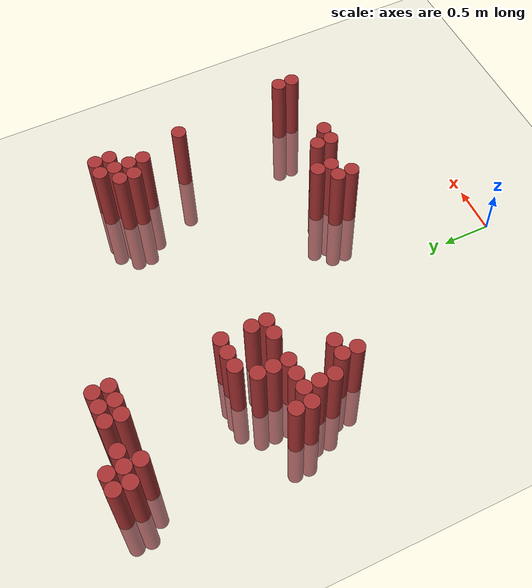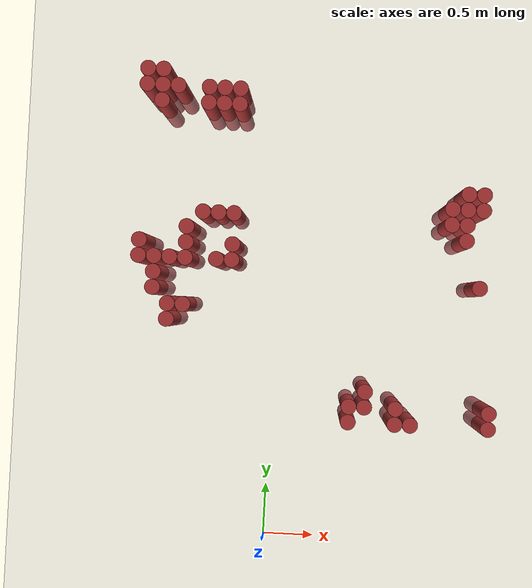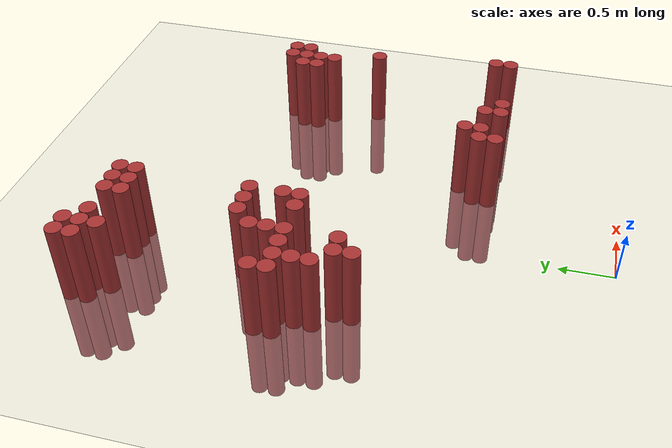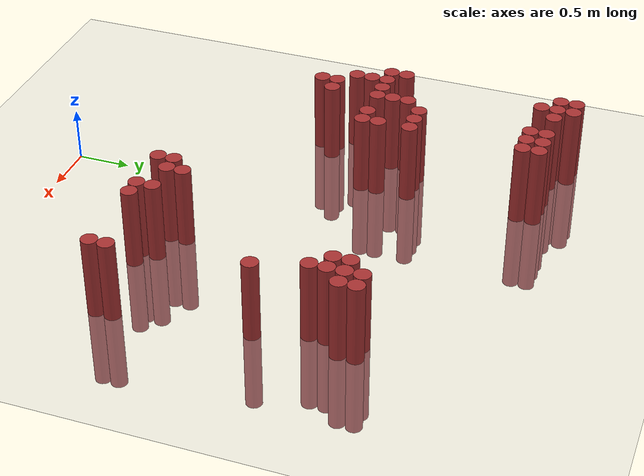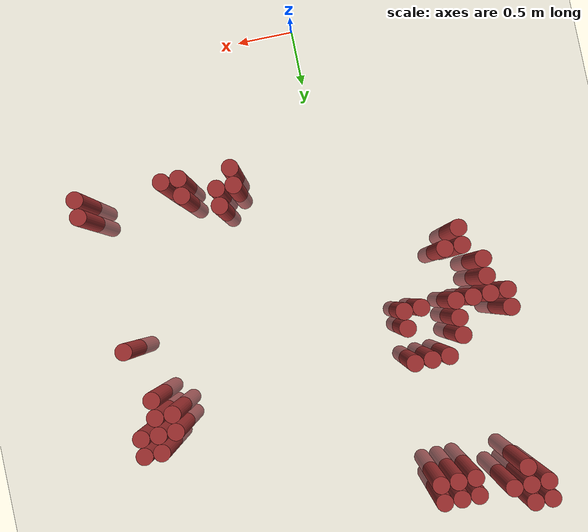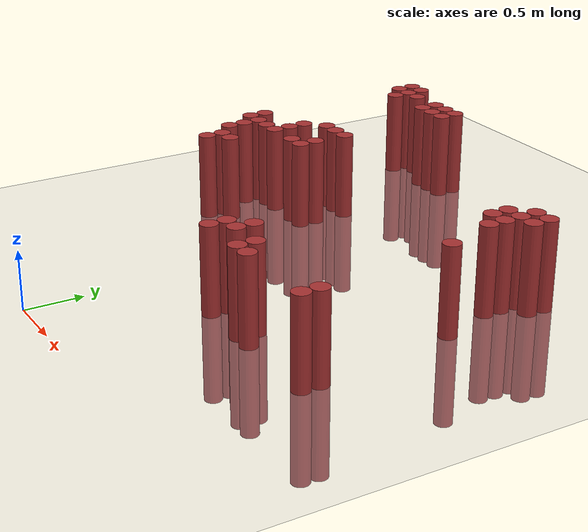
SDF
<sdf version="1.6">
 <world name="default">
  <model name="ground_plane">
   <static>1</static>
   <link name="link">
    <collision name="collision">
     <geometry><plane><normal>0 0 1</normal><size>100 100</size></plane></geometry>
     <surface><friction><ode><mu>100</mu><mu2>50</mu2></ode></friction></surface>
    </collision>
    <visual name="visual">
     <cast_shadows>0</cast_shadows>
     <geometry><plane><normal>0 0 1</normal><size>100 100</size></plane></geometry>
     <material>
      <script><uri>file://media/materials/scripts/gazebo.material</uri><name>Gazebo/Grey</name></script>
     </material>
    </visual>
   </link>
  </model>
  <model name="unit_cylinder_163">
   <static>1</static>
   <pose>-1.325000 2.725000 0.000000 0.000000 0.000000 0.000000</pose>
   <link name="link">
    <inertial>
     <mass>1</mass>
     <inertia><ixx>0.145833</ixx><ixy>0</ixy><ixz>0</ixz><iyy>0.145833</iyy><iyz>0</iyz><izz>0.125</izz></inertia>
    </inertial>
    <collision name="collision">
     <geometry><cylinder><radius>0.075000</radius><length>1.5</length></cylinder></geometry>
    </collision>
    <visual name="visual">
     <geometry><cylinder><radius>0.075000</radius><length>1.5</length></cylinder></geometry>
     <material>
      <ambient>0.648000 0.192000 0.192000 1</ambient>
      <diffuse>0.648000 0.192000 0.192000 1</diffuse>
     </material>
     <material>
      <script><name>Gazebo/Grey</name><uri>file://media/materials/scripts/gazebo.material</uri></script>
     </material>
    </visual>
   </link>
  </model>
  <model name="unit_cylinder_164">
   <static>1</static>
   <pose>-1.325000 2.875000 0.000000 0.000000 0.000000 0.000000</pose>
   <link name="link">
    <inertial>
     <mass>1</mass>
     <inertia><ixx>0.145833</ixx><ixy>0</ixy><ixz>0</ixz><iyy>0.145833</iyy><iyz>0</iyz><izz>0.125</izz></inertia>
    </inertial>
    <collision name="collision">
     <geometry><cylinder><radius>0.075000</radius><length>1.5</length></cylinder></geometry>
    </collision>
    <visual name="visual">
     <geometry><cylinder><radius>0.075000</radius><length>1.5</length></cylinder></geometry>
     <material>
      <ambient>0.648000 0.192000 0.192000 1</ambient>
      <diffuse>0.648000 0.192000 0.192000 1</diffuse>
     </material>
     <material>
      <script><name>Gazebo/Grey</name><uri>file://media/materials/scripts/gazebo.material</uri></script>
     </material>
    </visual>
   </link>
  </model>
  <model name="unit_cylinder_165">
   <static>1</static>
   <pose>-1.325000 4.375000 0.000000 0.000000 0.000000 0.000000</pose>
   <link name="link">
    <inertial>
     <mass>1</mass>
     <inertia><ixx>0.145833</ixx><ixy>0</ixy><ixz>0</ixz><iyy>0.145833</iyy><iyz>0</iyz><izz>0.125</izz></inertia>
    </inertial>
    <collision name="collision">
     <geometry><cylinder><radius>0.075000</radius><length>1.5</length></cylinder></geometry>
    </collision>
    <visual name="visual">
     <geometry><cylinder><radius>0.075000</radius><length>1.5</length></cylinder></geometry>
     <material>
      <ambient>0.648000 0.192000 0.192000 1</ambient>
      <diffuse>0.648000 0.192000 0.192000 1</diffuse>
     </material>
     <material>
      <script><name>Gazebo/Grey</name><uri>file://media/materials/scripts/gazebo.material</uri></script>
     </material>
    </visual>
   </link>
  </model>
  <model name="unit_cylinder_166">
   <static>1</static>
   <pose>-1.325000 4.525000 0.000000 0.000000 0.000000 0.000000</pose>
   <link name="link">
    <inertial>
     <mass>1</mass>
     <inertia><ixx>0.145833</ixx><ixy>0</ixy><ixz>0</ixz><iyy>0.145833</iyy><iyz>0</iyz><izz>0.125</izz></inertia>
    </inertial>
    <collision name="collision">
     <geometry><cylinder><radius>0.075000</radius><length>1.5</length></cylinder></geometry>
    </collision>
    <visual name="visual">
     <geometry><cylinder><radius>0.075000</radius><length>1.5</length></cylinder></geometry>
     <material>
      <ambient>0.648000 0.192000 0.192000 1</ambient>
      <diffuse>0.648000 0.192000 0.192000 1</diffuse>
     </material>
     <material>
      <script><name>Gazebo/Grey</name><uri>file://media/materials/scripts/gazebo.material</uri></script>
     </material>
    </visual>
   </link>
  </model>
  <model name="unit_cylinder_167">
   <static>1</static>
   <pose>-1.175000 2.425000 0.000000 0.000000 0.000000 0.000000</pose>
   <link name="link">
    <inertial>
     <mass>1</mass>
     <inertia><ixx>0.145833</ixx><ixy>0</ixy><ixz>0</ixz><iyy>0.145833</iyy><iyz>0</iyz><izz>0.125</izz></inertia>
    </inertial>
    <collision name="collision">
     <geometry><cylinder><radius>0.075000</radius><length>1.5</length></cylinder></geometry>
    </collision>
    <visual name="visual">
     <geometry><cylinder><radius>0.075000</radius><length>1.5</length></cylinder></geometry>
     <material>
      <ambient>0.648000 0.192000 0.192000 1</ambient>
      <diffuse>0.648000 0.192000 0.192000 1</diffuse>
     </material>
     <material>
      <script><name>Gazebo/Grey</name><uri>file://media/materials/scripts/gazebo.material</uri></script>
     </material>
    </visual>
   </link>
  </model>
  <model name="unit_cylinder_168">
   <static>1</static>
   <pose>-1.175000 2.575000 0.000000 0.000000 0.000000 0.000000</pose>
   <link name="link">
    <inertial>
     <mass>1</mass>
     <inertia><ixx>0.145833</ixx><ixy>0</ixy><ixz>0</ixz><iyy>0.145833</iyy><iyz>0</iyz><izz>0.125</izz></inertia>
    </inertial>
    <collision name="collision">
     <geometry><cylinder><radius>0.075000</radius><length>1.5</length></cylinder></geometry>
    </collision>
    <visual name="visual">
     <geometry><cylinder><radius>0.075000</radius><length>1.5</length></cylinder></geometry>
     <material>
      <ambient>0.648000 0.192000 0.192000 1</ambient>
      <diffuse>0.648000 0.192000 0.192000 1</diffuse>
     </material>
     <material>
      <script><name>Gazebo/Grey</name><uri>file://media/materials/scripts/gazebo.material</uri></script>
     </material>
    </visual>
   </link>
  </model>
  <model name="unit_cylinder_169">
   <static>1</static>
   <pose>-1.175000 2.725000 0.000000 0.000000 0.000000 0.000000</pose>
   <link name="link">
    <inertial>
     <mass>1</mass>
     <inertia><ixx>0.145833</ixx><ixy>0</ixy><ixz>0</ixz><iyy>0.145833</iyy><iyz>0</iyz><izz>0.125</izz></inertia>
    </inertial>
    <collision name="collision">
     <geometry><cylinder><radius>0.075000</radius><length>1.5</length></cylinder></geometry>
    </collision>
    <visual name="visual">
     <geometry><cylinder><radius>0.075000</radius><length>1.5</length></cylinder></geometry>
     <material>
      <ambient>0.648000 0.192000 0.192000 1</ambient>
      <diffuse>0.648000 0.192000 0.192000 1</diffuse>
     </material>
     <material>
      <script><name>Gazebo/Grey</name><uri>file://media/materials/scripts/gazebo.material</uri></script>
     </material>
    </visual>
   </link>
  </model>
  <model name="unit_cylinder_170">
   <static>1</static>
   <pose>-1.175000 4.225000 0.000000 0.000000 0.000000 0.000000</pose>
   <link name="link">
    <inertial>
     <mass>1</mass>
     <inertia><ixx>0.145833</ixx><ixy>0</ixy><ixz>0</ixz><iyy>0.145833</iyy><iyz>0</iyz><izz>0.125</izz></inertia>
    </inertial>
    <collision name="collision">
     <geometry><cylinder><radius>0.075000</radius><length>1.5</length></cylinder></geometry>
    </collision>
    <visual name="visual">
     <geometry><cylinder><radius>0.075000</radius><length>1.5</length></cylinder></geometry>
     <material>
      <ambient>0.648000 0.192000 0.192000 1</ambient>
      <diffuse>0.648000 0.192000 0.192000 1</diffuse>
     </material>
     <material>
      <script><name>Gazebo/Grey</name><uri>file://media/materials/scripts/gazebo.material</uri></script>
     </material>
    </visual>
   </link>
  </model>
  <model name="unit_cylinder_171">
   <static>1</static>
   <pose>-1.175000 4.375000 0.000000 0.000000 0.000000 0.000000</pose>
   <link name="link">
    <inertial>
     <mass>1</mass>
     <inertia><ixx>0.145833</ixx><ixy>0</ixy><ixz>0</ixz><iyy>0.145833</iyy><iyz>0</iyz><izz>0.125</izz></inertia>
    </inertial>
    <collision name="collision">
     <geometry><cylinder><radius>0.075000</radius><length>1.5</length></cylinder></geometry>
    </collision>
    <visual name="visual">
     <geometry><cylinder><radius>0.075000</radius><length>1.5</length></cylinder></geometry>
     <material>
      <ambient>0.648000 0.192000 0.192000 1</ambient>
      <diffuse>0.648000 0.192000 0.192000 1</diffuse>
     </material>
     <material>
      <script><name>Gazebo/Grey</name><uri>file://media/materials/scripts/gazebo.material</uri></script>
     </material>
    </visual>
   </link>
  </model>
  <model name="unit_cylinder_172">
   <static>1</static>
   <pose>-1.175000 4.525000 0.000000 0.000000 0.000000 0.000000</pose>
   <link name="link">
    <inertial>
     <mass>1</mass>
     <inertia><ixx>0.145833</ixx><ixy>0</ixy><ixz>0</ixz><iyy>0.145833</iyy><iyz>0</iyz><izz>0.125</izz></inertia>
    </inertial>
    <collision name="collision">
     <geometry><cylinder><radius>0.075000</radius><length>1.5</length></cylinder></geometry>
    </collision>
    <visual name="visual">
     <geometry><cylinder><radius>0.075000</radius><length>1.5</length></cylinder></geometry>
     <material>
      <ambient>0.648000 0.192000 0.192000 1</ambient>
      <diffuse>0.648000 0.192000 0.192000 1</diffuse>
     </material>
     <material>
      <script><name>Gazebo/Grey</name><uri>file://media/materials/scripts/gazebo.material</uri></script>
     </material>
    </visual>
   </link>
  </model>
  <model name="unit_cylinder_173">
   <static>1</static>
   <pose>-1.025000 2.125000 0.000000 0.000000 0.000000 0.000000</pose>
   <link name="link">
    <inertial>
     <mass>1</mass>
     <inertia><ixx>0.145833</ixx><ixy>0</ixy><ixz>0</ixz><iyy>0.145833</iyy><iyz>0</iyz><izz>0.125</izz></inertia>
    </inertial>
    <collision name="collision">
     <geometry><cylinder><radius>0.075000</radius><length>1.5</length></cylinder></geometry>
    </collision>
    <visual name="visual">
     <geometry><cylinder><radius>0.075000</radius><length>1.5</length></cylinder></geometry>
     <material>
      <ambient>0.648000 0.192000 0.192000 1</ambient>
      <diffuse>0.648000 0.192000 0.192000 1</diffuse>
     </material>
     <material>
      <script><name>Gazebo/Grey</name><uri>file://media/materials/scripts/gazebo.material</uri></script>
     </material>
    </visual>
   </link>
  </model>
  <model name="unit_cylinder_174">
   <static>1</static>
   <pose>-1.025000 2.275000 0.000000 0.000000 0.000000 0.000000</pose>
   <link name="link">
    <inertial>
     <mass>1</mass>
     <inertia><ixx>0.145833</ixx><ixy>0</ixy><ixz>0</ixz><iyy>0.145833</iyy><iyz>0</iyz><izz>0.125</izz></inertia>
    </inertial>
    <collision name="collision">
     <geometry><cylinder><radius>0.075000</radius><length>1.5</length></cylinder></geometry>
    </collision>
    <visual name="visual">
     <geometry><cylinder><radius>0.075000</radius><length>1.5</length></cylinder></geometry>
     <material>
      <ambient>0.648000 0.192000 0.192000 1</ambient>
      <diffuse>0.648000 0.192000 0.192000 1</diffuse>
     </material>
     <material>
      <script><name>Gazebo/Grey</name><uri>file://media/materials/scripts/gazebo.material</uri></script>
     </material>
    </visual>
   </link>
  </model>
  <model name="unit_cylinder_175">
   <static>1</static>
   <pose>-1.025000 2.725000 0.000000 0.000000 0.000000 0.000000</pose>
   <link name="link">
    <inertial>
     <mass>1</mass>
     <inertia><ixx>0.145833</ixx><ixy>0</ixy><ixz>0</ixz><iyy>0.145833</iyy><iyz>0</iyz><izz>0.125</izz></inertia>
    </inertial>
    <collision name="collision">
     <geometry><cylinder><radius>0.075000</radius><length>1.5</length></cylinder></geometry>
    </collision>
    <visual name="visual">
     <geometry><cylinder><radius>0.075000</radius><length>1.5</length></cylinder></geometry>
     <material>
      <ambient>0.648000 0.192000 0.192000 1</ambient>
      <diffuse>0.648000 0.192000 0.192000 1</diffuse>
     </material>
     <material>
      <script><name>Gazebo/Grey</name><uri>file://media/materials/scripts/gazebo.material</uri></script>
     </material>
    </visual>
   </link>
  </model>
  <model name="unit_cylinder_176">
   <static>1</static>
   <pose>-1.025000 4.375000 0.000000 0.000000 0.000000 0.000000</pose>
   <link name="link">
    <inertial>
     <mass>1</mass>
     <inertia><ixx>0.145833</ixx><ixy>0</ixy><ixz>0</ixz><iyy>0.145833</iyy><iyz>0</iyz><izz>0.125</izz></inertia>
    </inertial>
    <collision name="collision">
     <geometry><cylinder><radius>0.075000</radius><length>1.5</length></cylinder></geometry>
    </collision>
    <visual name="visual">
     <geometry><cylinder><radius>0.075000</radius><length>1.5</length></cylinder></geometry>
     <material>
      <ambient>0.648000 0.192000 0.192000 1</ambient>
      <diffuse>0.648000 0.192000 0.192000 1</diffuse>
     </material>
     <material>
      <script><name>Gazebo/Grey</name><uri>file://media/materials/scripts/gazebo.material</uri></script>
     </material>
    </visual>
   </link>
  </model>
  <model name="unit_cylinder_177">
   <static>1</static>
   <pose>-0.875000 2.275000 0.000000 0.000000 0.000000 0.000000</pose>
   <link name="link">
    <inertial>
     <mass>1</mass>
     <inertia><ixx>0.145833</ixx><ixy>0</ixy><ixz>0</ixz><iyy>0.145833</iyy><iyz>0</iyz><izz>0.125</izz></inertia>
    </inertial>
    <collision name="collision">
     <geometry><cylinder><radius>0.075000</radius><length>1.5</length></cylinder></geometry>
    </collision>
    <visual name="visual">
     <geometry><cylinder><radius>0.075000</radius><length>1.5</length></cylinder></geometry>
     <material>
      <ambient>0.648000 0.192000 0.192000 1</ambient>
      <diffuse>0.648000 0.192000 0.192000 1</diffuse>
     </material>
     <material>
      <script><name>Gazebo/Grey</name><uri>file://media/materials/scripts/gazebo.material</uri></script>
     </material>
    </visual>
   </link>
  </model>
  <model name="unit_cylinder_178">
   <static>1</static>
   <pose>-0.875000 2.725000 0.000000 0.000000 0.000000 0.000000</pose>
   <link name="link">
    <inertial>
     <mass>1</mass>
     <inertia><ixx>0.145833</ixx><ixy>0</ixy><ixz>0</ixz><iyy>0.145833</iyy><iyz>0</iyz><izz>0.125</izz></inertia>
    </inertial>
    <collision name="collision">
     <geometry><cylinder><radius>0.075000</radius><length>1.5</length></cylinder></geometry>
    </collision>
    <visual name="visual">
     <geometry><cylinder><radius>0.075000</radius><length>1.5</length></cylinder></geometry>
     <material>
      <ambient>0.648000 0.192000 0.192000 1</ambient>
      <diffuse>0.648000 0.192000 0.192000 1</diffuse>
     </material>
     <material>
      <script><name>Gazebo/Grey</name><uri>file://media/materials/scripts/gazebo.material</uri></script>
     </material>
    </visual>
   </link>
  </model>
  <model name="unit_cylinder_179">
   <static>1</static>
   <pose>-0.875000 2.875000 0.000000 0.000000 0.000000 0.000000</pose>
   <link name="link">
    <inertial>
     <mass>1</mass>
     <inertia><ixx>0.145833</ixx><ixy>0</ixy><ixz>0</ixz><iyy>0.145833</iyy><iyz>0</iyz><izz>0.125</izz></inertia>
    </inertial>
    <collision name="collision">
     <geometry><cylinder><radius>0.075000</radius><length>1.5</length></cylinder></geometry>
    </collision>
    <visual name="visual">
     <geometry><cylinder><radius>0.075000</radius><length>1.5</length></cylinder></geometry>
     <material>
      <ambient>0.648000 0.192000 0.192000 1</ambient>
      <diffuse>0.648000 0.192000 0.192000 1</diffuse>
     </material>
     <material>
      <script><name>Gazebo/Grey</name><uri>file://media/materials/scripts/gazebo.material</uri></script>
     </material>
    </visual>
   </link>
  </model>
  <model name="unit_cylinder_180">
   <static>1</static>
   <pose>-0.875000 3.025000 0.000000 0.000000 0.000000 0.000000</pose>
   <link name="link">
    <inertial>
     <mass>1</mass>
     <inertia><ixx>0.145833</ixx><ixy>0</ixy><ixz>0</ixz><iyy>0.145833</iyy><iyz>0</iyz><izz>0.125</izz></inertia>
    </inertial>
    <collision name="collision">
     <geometry><cylinder><radius>0.075000</radius><length>1.5</length></cylinder></geometry>
    </collision>
    <visual name="visual">
     <geometry><cylinder><radius>0.075000</radius><length>1.5</length></cylinder></geometry>
     <material>
      <ambient>0.648000 0.192000 0.192000 1</ambient>
      <diffuse>0.648000 0.192000 0.192000 1</diffuse>
     </material>
     <material>
      <script><name>Gazebo/Grey</name><uri>file://media/materials/scripts/gazebo.material</uri></script>
     </material>
    </visual>
   </link>
  </model>
  <model name="unit_cylinder_183">
   <static>1</static>
   <pose>-0.725000 3.175000 0.000000 0.000000 0.000000 0.000000</pose>
   <link name="link">
    <inertial>
     <mass>1</mass>
     <inertia><ixx>0.145833</ixx><ixy>0</ixy><ixz>0</ixz><iyy>0.145833</iyy><iyz>0</iyz><izz>0.125</izz></inertia>
    </inertial>
    <collision name="collision">
     <geometry><cylinder><radius>0.075000</radius><length>1.5</length></cylinder></geometry>
    </collision>
    <visual name="visual">
     <geometry><cylinder><radius>0.075000</radius><length>1.5</length></cylinder></geometry>
     <material>
      <ambient>0.648000 0.192000 0.192000 1</ambient>
      <diffuse>0.648000 0.192000 0.192000 1</diffuse>
     </material>
     <material>
      <script><name>Gazebo/Grey</name><uri>file://media/materials/scripts/gazebo.material</uri></script>
     </material>
    </visual>
   </link>
  </model>
  <model name="unit_cylinder_184">
   <static>1</static>
   <pose>-0.725000 4.225000 0.000000 0.000000 0.000000 0.000000</pose>
   <link name="link">
    <inertial>
     <mass>1</mass>
     <inertia><ixx>0.145833</ixx><ixy>0</ixy><ixz>0</ixz><iyy>0.145833</iyy><iyz>0</iyz><izz>0.125</izz></inertia>
    </inertial>
    <collision name="collision">
     <geometry><cylinder><radius>0.075000</radius><length>1.5</length></cylinder></geometry>
    </collision>
    <visual name="visual">
     <geometry><cylinder><radius>0.075000</radius><length>1.5</length></cylinder></geometry>
     <material>
      <ambient>0.648000 0.192000 0.192000 1</ambient>
      <diffuse>0.648000 0.192000 0.192000 1</diffuse>
     </material>
     <material>
      <script><name>Gazebo/Grey</name><uri>file://media/materials/scripts/gazebo.material</uri></script>
     </material>
    </visual>
   </link>
  </model>
  <model name="unit_cylinder_185">
   <static>1</static>
   <pose>-0.725000 4.375000 0.000000 0.000000 0.000000 0.000000</pose>
   <link name="link">
    <inertial>
     <mass>1</mass>
     <inertia><ixx>0.145833</ixx><ixy>0</ixy><ixz>0</ixz><iyy>0.145833</iyy><iyz>0</iyz><izz>0.125</izz></inertia>
    </inertial>
    <collision name="collision">
     <geometry><cylinder><radius>0.075000</radius><length>1.5</length></cylinder></geometry>
    </collision>
    <visual name="visual">
     <geometry><cylinder><radius>0.075000</radius><length>1.5</length></cylinder></geometry>
     <material>
      <ambient>0.648000 0.192000 0.192000 1</ambient>
      <diffuse>0.648000 0.192000 0.192000 1</diffuse>
     </material>
     <material>
      <script><name>Gazebo/Grey</name><uri>file://media/materials/scripts/gazebo.material</uri></script>
     </material>
    </visual>
   </link>
  </model>
  <model name="unit_cylinder_188">
   <static>1</static>
   <pose>-0.575000 2.725000 0.000000 0.000000 0.000000 0.000000</pose>
   <link name="link">
    <inertial>
     <mass>1</mass>
     <inertia><ixx>0.145833</ixx><ixy>0</ixy><ixz>0</ixz><iyy>0.145833</iyy><iyz>0</iyz><izz>0.125</izz></inertia>
    </inertial>
    <collision name="collision">
     <geometry><cylinder><radius>0.075000</radius><length>1.5</length></cylinder></geometry>
    </collision>
    <visual name="visual">
     <geometry><cylinder><radius>0.075000</radius><length>1.5</length></cylinder></geometry>
     <material>
      <ambient>0.648000 0.192000 0.192000 1</ambient>
      <diffuse>0.648000 0.192000 0.192000 1</diffuse>
     </material>
     <material>
      <script><name>Gazebo/Grey</name><uri>file://media/materials/scripts/gazebo.material</uri></script>
     </material>
    </visual>
   </link>
  </model>
  <model name="unit_cylinder_189">
   <static>1</static>
   <pose>-0.575000 3.175000 0.000000 0.000000 0.000000 0.000000</pose>
   <link name="link">
    <inertial>
     <mass>1</mass>
     <inertia><ixx>0.145833</ixx><ixy>0</ixy><ixz>0</ixz><iyy>0.145833</iyy><iyz>0</iyz><izz>0.125</izz></inertia>
    </inertial>
    <collision name="collision">
     <geometry><cylinder><radius>0.075000</radius><length>1.5</length></cylinder></geometry>
    </collision>
    <visual name="visual">
     <geometry><cylinder><radius>0.075000</radius><length>1.5</length></cylinder></geometry>
     <material>
      <ambient>0.648000 0.192000 0.192000 1</ambient>
      <diffuse>0.648000 0.192000 0.192000 1</diffuse>
     </material>
     <material>
      <script><name>Gazebo/Grey</name><uri>file://media/materials/scripts/gazebo.material</uri></script>
     </material>
    </visual>
   </link>
  </model>
  <model name="unit_cylinder_190">
   <static>1</static>
   <pose>-0.575000 4.225000 0.000000 0.000000 0.000000 0.000000</pose>
   <link name="link">
    <inertial>
     <mass>1</mass>
     <inertia><ixx>0.145833</ixx><ixy>0</ixy><ixz>0</ixz><iyy>0.145833</iyy><iyz>0</iyz><izz>0.125</izz></inertia>
    </inertial>
    <collision name="collision">
     <geometry><cylinder><radius>0.075000</radius><length>1.5</length></cylinder></geometry>
    </collision>
    <visual name="visual">
     <geometry><cylinder><radius>0.075000</radius><length>1.5</length></cylinder></geometry>
     <material>
      <ambient>0.648000 0.192000 0.192000 1</ambient>
      <diffuse>0.648000 0.192000 0.192000 1</diffuse>
     </material>
     <material>
      <script><name>Gazebo/Grey</name><uri>file://media/materials/scripts/gazebo.material</uri></script>
     </material>
    </visual>
   </link>
  </model>
  <model name="unit_cylinder_191">
   <static>1</static>
   <pose>-0.575000 4.375000 0.000000 0.000000 0.000000 0.000000</pose>
   <link name="link">
    <inertial>
     <mass>1</mass>
     <inertia><ixx>0.145833</ixx><ixy>0</ixy><ixz>0</ixz><iyy>0.145833</iyy><iyz>0</iyz><izz>0.125</izz></inertia>
    </inertial>
    <collision name="collision">
     <geometry><cylinder><radius>0.075000</radius><length>1.5</length></cylinder></geometry>
    </collision>
    <visual name="visual">
     <geometry><cylinder><radius>0.075000</radius><length>1.5</length></cylinder></geometry>
     <material>
      <ambient>0.648000 0.192000 0.192000 1</ambient>
      <diffuse>0.648000 0.192000 0.192000 1</diffuse>
     </material>
     <material>
      <script><name>Gazebo/Grey</name><uri>file://media/materials/scripts/gazebo.material</uri></script>
     </material>
    </visual>
   </link>
  </model>
  <model name="unit_cylinder_192">
   <static>1</static>
   <pose>-0.425000 2.725000 0.000000 0.000000 0.000000 0.000000</pose>
   <link name="link">
    <inertial>
     <mass>1</mass>
     <inertia><ixx>0.145833</ixx><ixy>0</ixy><ixz>0</ixz><iyy>0.145833</iyy><iyz>0</iyz><izz>0.125</izz></inertia>
    </inertial>
    <collision name="collision">
     <geometry><cylinder><radius>0.075000</radius><length>1.5</length></cylinder></geometry>
    </collision>
    <visual name="visual">
     <geometry><cylinder><radius>0.075000</radius><length>1.5</length></cylinder></geometry>
     <material>
      <ambient>0.648000 0.192000 0.192000 1</ambient>
      <diffuse>0.648000 0.192000 0.192000 1</diffuse>
     </material>
     <material>
      <script><name>Gazebo/Grey</name><uri>file://media/materials/scripts/gazebo.material</uri></script>
     </material>
    </visual>
   </link>
  </model>
  <model name="unit_cylinder_193">
   <static>1</static>
   <pose>-0.425000 2.875000 0.000000 0.000000 0.000000 0.000000</pose>
   <link name="link">
    <inertial>
     <mass>1</mass>
     <inertia><ixx>0.145833</ixx><ixy>0</ixy><ixz>0</ixz><iyy>0.145833</iyy><iyz>0</iyz><izz>0.125</izz></inertia>
    </inertial>
    <collision name="collision">
     <geometry><cylinder><radius>0.075000</radius><length>1.5</length></cylinder></geometry>
    </collision>
    <visual name="visual">
     <geometry><cylinder><radius>0.075000</radius><length>1.5</length></cylinder></geometry>
     <material>
      <ambient>0.648000 0.192000 0.192000 1</ambient>
      <diffuse>0.648000 0.192000 0.192000 1</diffuse>
     </material>
     <material>
      <script><name>Gazebo/Grey</name><uri>file://media/materials/scripts/gazebo.material</uri></script>
     </material>
    </visual>
   </link>
  </model>
  <model name="unit_cylinder_194">
   <static>1</static>
   <pose>-0.425000 3.175000 0.000000 0.000000 0.000000 0.000000</pose>
   <link name="link">
    <inertial>
     <mass>1</mass>
     <inertia><ixx>0.145833</ixx><ixy>0</ixy><ixz>0</ixz><iyy>0.145833</iyy><iyz>0</iyz><izz>0.125</izz></inertia>
    </inertial>
    <collision name="collision">
     <geometry><cylinder><radius>0.075000</radius><length>1.5</length></cylinder></geometry>
    </collision>
    <visual name="visual">
     <geometry><cylinder><radius>0.075000</radius><length>1.5</length></cylinder></geometry>
     <material>
      <ambient>0.648000 0.192000 0.192000 1</ambient>
      <diffuse>0.648000 0.192000 0.192000 1</diffuse>
     </material>
     <material>
      <script><name>Gazebo/Grey</name><uri>file://media/materials/scripts/gazebo.material</uri></script>
     </material>
    </visual>
   </link>
  </model>
  <model name="unit_cylinder_195">
   <static>1</static>
   <pose>-0.425000 4.225000 0.000000 0.000000 0.000000 0.000000</pose>
   <link name="link">
    <inertial>
     <mass>1</mass>
     <inertia><ixx>0.145833</ixx><ixy>0</ixy><ixz>0</ixz><iyy>0.145833</iyy><iyz>0</iyz><izz>0.125</izz></inertia>
    </inertial>
    <collision name="collision">
     <geometry><cylinder><radius>0.075000</radius><length>1.5</length></cylinder></geometry>
    </collision>
    <visual name="visual">
     <geometry><cylinder><radius>0.075000</radius><length>1.5</length></cylinder></geometry>
     <material>
      <ambient>0.648000 0.192000 0.192000 1</ambient>
      <diffuse>0.648000 0.192000 0.192000 1</diffuse>
     </material>
     <material>
      <script><name>Gazebo/Grey</name><uri>file://media/materials/scripts/gazebo.material</uri></script>
     </material>
    </visual>
   </link>
  </model>
  <model name="unit_cylinder_196">
   <static>1</static>
   <pose>-0.425000 4.375000 0.000000 0.000000 0.000000 0.000000</pose>
   <link name="link">
    <inertial>
     <mass>1</mass>
     <inertia><ixx>0.145833</ixx><ixy>0</ixy><ixz>0</ixz><iyy>0.145833</iyy><iyz>0</iyz><izz>0.125</izz></inertia>
    </inertial>
    <collision name="collision">
     <geometry><cylinder><radius>0.075000</radius><length>1.5</length></cylinder></geometry>
    </collision>
    <visual name="visual">
     <geometry><cylinder><radius>0.075000</radius><length>1.5</length></cylinder></geometry>
     <material>
      <ambient>0.648000 0.192000 0.192000 1</ambient>
      <diffuse>0.648000 0.192000 0.192000 1</diffuse>
     </material>
     <material>
      <script><name>Gazebo/Grey</name><uri>file://media/materials/scripts/gazebo.material</uri></script>
     </material>
    </visual>
   </link>
  </model>
  <model name="unit_cylinder_203">
   <static>1</static>
   <pose>0.775000 1.225000 0.000000 0.000000 0.000000 0.000000</pose>
   <link name="link">
    <inertial>
     <mass>1</mass>
     <inertia><ixx>0.145833</ixx><ixy>0</ixy><ixz>0</ixz><iyy>0.145833</iyy><iyz>0</iyz><izz>0.125</izz></inertia>
    </inertial>
    <collision name="collision">
     <geometry><cylinder><radius>0.075000</radius><length>1.5</length></cylinder></geometry>
    </collision>
    <visual name="visual">
     <geometry><cylinder><radius>0.075000</radius><length>1.5</length></cylinder></geometry>
     <material>
      <ambient>0.648000 0.192000 0.192000 1</ambient>
      <diffuse>0.648000 0.192000 0.192000 1</diffuse>
     </material>
     <material>
      <script><name>Gazebo/Grey</name><uri>file://media/materials/scripts/gazebo.material</uri></script>
     </material>
    </visual>
   </link>
  </model>
  <model name="unit_cylinder_204">
   <static>1</static>
   <pose>0.775000 1.375000 0.000000 0.000000 0.000000 0.000000</pose>
   <link name="link">
    <inertial>
     <mass>1</mass>
     <inertia><ixx>0.145833</ixx><ixy>0</ixy><ixz>0</ixz><iyy>0.145833</iyy><iyz>0</iyz><izz>0.125</izz></inertia>
    </inertial>
    <collision name="collision">
     <geometry><cylinder><radius>0.075000</radius><length>1.5</length></cylinder></geometry>
    </collision>
    <visual name="visual">
     <geometry><cylinder><radius>0.075000</radius><length>1.5</length></cylinder></geometry>
     <material>
      <ambient>0.648000 0.192000 0.192000 1</ambient>
      <diffuse>0.648000 0.192000 0.192000 1</diffuse>
     </material>
     <material>
      <script><name>Gazebo/Grey</name><uri>file://media/materials/scripts/gazebo.material</uri></script>
     </material>
    </visual>
   </link>
  </model>
  <model name="unit_cylinder_206">
   <static>1</static>
   <pose>0.925000 1.375000 0.000000 0.000000 0.000000 0.000000</pose>
   <link name="link">
    <inertial>
     <mass>1</mass>
     <inertia><ixx>0.145833</ixx><ixy>0</ixy><ixz>0</ixz><iyy>0.145833</iyy><iyz>0</iyz><izz>0.125</izz></inertia>
    </inertial>
    <collision name="collision">
     <geometry><cylinder><radius>0.075000</radius><length>1.5</length></cylinder></geometry>
    </collision>
    <visual name="visual">
     <geometry><cylinder><radius>0.075000</radius><length>1.5</length></cylinder></geometry>
     <material>
      <ambient>0.648000 0.192000 0.192000 1</ambient>
      <diffuse>0.648000 0.192000 0.192000 1</diffuse>
     </material>
     <material>
      <script><name>Gazebo/Grey</name><uri>file://media/materials/scripts/gazebo.material</uri></script>
     </material>
    </visual>
   </link>
  </model>
  <model name="unit_cylinder_207">
   <static>1</static>
   <pose>0.925000 1.525000 0.000000 0.000000 0.000000 0.000000</pose>
   <link name="link">
    <inertial>
     <mass>1</mass>
     <inertia><ixx>0.145833</ixx><ixy>0</ixy><ixz>0</ixz><iyy>0.145833</iyy><iyz>0</iyz><izz>0.125</izz></inertia>
    </inertial>
    <collision name="collision">
     <geometry><cylinder><radius>0.075000</radius><length>1.5</length></cylinder></geometry>
    </collision>
    <visual name="visual">
     <geometry><cylinder><radius>0.075000</radius><length>1.5</length></cylinder></geometry>
     <material>
      <ambient>0.648000 0.192000 0.192000 1</ambient>
      <diffuse>0.648000 0.192000 0.192000 1</diffuse>
     </material>
     <material>
      <script><name>Gazebo/Grey</name><uri>file://media/materials/scripts/gazebo.material</uri></script>
     </material>
    </visual>
   </link>
  </model>
  <model name="unit_cylinder_210">
   <static>1</static>
   <pose>1.225000 1.225000 0.000000 0.000000 0.000000 0.000000</pose>
   <link name="link">
    <inertial>
     <mass>1</mass>
     <inertia><ixx>0.145833</ixx><ixy>0</ixy><ixz>0</ixz><iyy>0.145833</iyy><iyz>0</iyz><izz>0.125</izz></inertia>
    </inertial>
    <collision name="collision">
     <geometry><cylinder><radius>0.075000</radius><length>1.5</length></cylinder></geometry>
    </collision>
    <visual name="visual">
     <geometry><cylinder><radius>0.075000</radius><length>1.5</length></cylinder></geometry>
     <material>
      <ambient>0.648000 0.192000 0.192000 1</ambient>
      <diffuse>0.648000 0.192000 0.192000 1</diffuse>
     </material>
     <material>
      <script><name>Gazebo/Grey</name><uri>file://media/materials/scripts/gazebo.material</uri></script>
     </material>
    </visual>
   </link>
  </model>
  <model name="unit_cylinder_211">
   <static>1</static>
   <pose>1.225000 1.375000 0.000000 0.000000 0.000000 0.000000</pose>
   <link name="link">
    <inertial>
     <mass>1</mass>
     <inertia><ixx>0.145833</ixx><ixy>0</ixy><ixz>0</ixz><iyy>0.145833</iyy><iyz>0</iyz><izz>0.125</izz></inertia>
    </inertial>
    <collision name="collision">
     <geometry><cylinder><radius>0.075000</radius><length>1.5</length></cylinder></geometry>
    </collision>
    <visual name="visual">
     <geometry><cylinder><radius>0.075000</radius><length>1.5</length></cylinder></geometry>
     <material>
      <ambient>0.648000 0.192000 0.192000 1</ambient>
      <diffuse>0.648000 0.192000 0.192000 1</diffuse>
     </material>
     <material>
      <script><name>Gazebo/Grey</name><uri>file://media/materials/scripts/gazebo.material</uri></script>
     </material>
    </visual>
   </link>
  </model>
  <model name="unit_cylinder_214">
   <static>1</static>
   <pose>1.375000 1.225000 0.000000 0.000000 0.000000 0.000000</pose>
   <link name="link">
    <inertial>
     <mass>1</mass>
     <inertia><ixx>0.145833</ixx><ixy>0</ixy><ixz>0</ixz><iyy>0.145833</iyy><iyz>0</iyz><izz>0.125</izz></inertia>
    </inertial>
    <collision name="collision">
     <geometry><cylinder><radius>0.075000</radius><length>1.5</length></cylinder></geometry>
    </collision>
    <visual name="visual">
     <geometry><cylinder><radius>0.075000</radius><length>1.5</length></cylinder></geometry>
     <material>
      <ambient>0.648000 0.192000 0.192000 1</ambient>
      <diffuse>0.648000 0.192000 0.192000 1</diffuse>
     </material>
     <material>
      <script><name>Gazebo/Grey</name><uri>file://media/materials/scripts/gazebo.material</uri></script>
     </material>
    </visual>
   </link>
  </model>
  <model name="unit_cylinder_218">
   <static>1</static>
   <pose>1.675000 3.175000 0.000000 0.000000 0.000000 0.000000</pose>
   <link name="link">
    <inertial>
     <mass>1</mass>
     <inertia><ixx>0.145833</ixx><ixy>0</ixy><ixz>0</ixz><iyy>0.145833</iyy><iyz>0</iyz><izz>0.125</izz></inertia>
    </inertial>
    <collision name="collision">
     <geometry><cylinder><radius>0.075000</radius><length>1.5</length></cylinder></geometry>
    </collision>
    <visual name="visual">
     <geometry><cylinder><radius>0.075000</radius><length>1.5</length></cylinder></geometry>
     <material>
      <ambient>0.648000 0.192000 0.192000 1</ambient>
      <diffuse>0.648000 0.192000 0.192000 1</diffuse>
     </material>
     <material>
      <script><name>Gazebo/Grey</name><uri>file://media/materials/scripts/gazebo.material</uri></script>
     </material>
    </visual>
   </link>
  </model>
  <model name="unit_cylinder_219">
   <static>1</static>
   <pose>1.675000 3.325000 0.000000 0.000000 0.000000 0.000000</pose>
   <link name="link">
    <inertial>
     <mass>1</mass>
     <inertia><ixx>0.145833</ixx><ixy>0</ixy><ixz>0</ixz><iyy>0.145833</iyy><iyz>0</iyz><izz>0.125</izz></inertia>
    </inertial>
    <collision name="collision">
     <geometry><cylinder><radius>0.075000</radius><length>1.5</length></cylinder></geometry>
    </collision>
    <visual name="visual">
     <geometry><cylinder><radius>0.075000</radius><length>1.5</length></cylinder></geometry>
     <material>
      <ambient>0.648000 0.192000 0.192000 1</ambient>
      <diffuse>0.648000 0.192000 0.192000 1</diffuse>
     </material>
     <material>
      <script><name>Gazebo/Grey</name><uri>file://media/materials/scripts/gazebo.material</uri></script>
     </material>
    </visual>
   </link>
  </model>
  <model name="unit_cylinder_220">
   <static>1</static>
   <pose>1.825000 3.025000 0.000000 0.000000 0.000000 0.000000</pose>
   <link name="link">
    <inertial>
     <mass>1</mass>
     <inertia><ixx>0.145833</ixx><ixy>0</ixy><ixz>0</ixz><iyy>0.145833</iyy><iyz>0</iyz><izz>0.125</izz></inertia>
    </inertial>
    <collision name="collision">
     <geometry><cylinder><radius>0.075000</radius><length>1.5</length></cylinder></geometry>
    </collision>
    <visual name="visual">
     <geometry><cylinder><radius>0.075000</radius><length>1.5</length></cylinder></geometry>
     <material>
      <ambient>0.648000 0.192000 0.192000 1</ambient>
      <diffuse>0.648000 0.192000 0.192000 1</diffuse>
     </material>
     <material>
      <script><name>Gazebo/Grey</name><uri>file://media/materials/scripts/gazebo.material</uri></script>
     </material>
    </visual>
   </link>
  </model>
  <model name="unit_cylinder_221">
   <static>1</static>
   <pose>1.825000 3.175000 0.000000 0.000000 0.000000 0.000000</pose>
   <link name="link">
    <inertial>
     <mass>1</mass>
     <inertia><ixx>0.145833</ixx><ixy>0</ixy><ixz>0</ixz><iyy>0.145833</iyy><iyz>0</iyz><izz>0.125</izz></inertia>
    </inertial>
    <collision name="collision">
     <geometry><cylinder><radius>0.075000</radius><length>1.5</length></cylinder></geometry>
    </collision>
    <visual name="visual">
     <geometry><cylinder><radius>0.075000</radius><length>1.5</length></cylinder></geometry>
     <material>
      <ambient>0.648000 0.192000 0.192000 1</ambient>
      <diffuse>0.648000 0.192000 0.192000 1</diffuse>
     </material>
     <material>
      <script><name>Gazebo/Grey</name><uri>file://media/materials/scripts/gazebo.material</uri></script>
     </material>
    </visual>
   </link>
  </model>
  <model name="unit_cylinder_222">
   <static>1</static>
   <pose>1.825000 3.325000 0.000000 0.000000 0.000000 0.000000</pose>
   <link name="link">
    <inertial>
     <mass>1</mass>
     <inertia><ixx>0.145833</ixx><ixy>0</ixy><ixz>0</ixz><iyy>0.145833</iyy><iyz>0</iyz><izz>0.125</izz></inertia>
    </inertial>
    <collision name="collision">
     <geometry><cylinder><radius>0.075000</radius><length>1.5</length></cylinder></geometry>
    </collision>
    <visual name="visual">
     <geometry><cylinder><radius>0.075000</radius><length>1.5</length></cylinder></geometry>
     <material>
      <ambient>0.648000 0.192000 0.192000 1</ambient>
      <diffuse>0.648000 0.192000 0.192000 1</diffuse>
     </material>
     <material>
      <script><name>Gazebo/Grey</name><uri>file://media/materials/scripts/gazebo.material</uri></script>
     </material>
    </visual>
   </link>
  </model>
  <model name="unit_cylinder_223">
   <static>1</static>
   <pose>1.825000 3.475000 0.000000 0.000000 0.000000 0.000000</pose>
   <link name="link">
    <inertial>
     <mass>1</mass>
     <inertia><ixx>0.145833</ixx><ixy>0</ixy><ixz>0</ixz><iyy>0.145833</iyy><iyz>0</iyz><izz>0.125</izz></inertia>
    </inertial>
    <collision name="collision">
     <geometry><cylinder><radius>0.075000</radius><length>1.5</length></cylinder></geometry>
    </collision>
    <visual name="visual">
     <geometry><cylinder><radius>0.075000</radius><length>1.5</length></cylinder></geometry>
     <material>
      <ambient>0.648000 0.192000 0.192000 1</ambient>
      <diffuse>0.648000 0.192000 0.192000 1</diffuse>
     </material>
     <material>
      <script><name>Gazebo/Grey</name><uri>file://media/materials/scripts/gazebo.material</uri></script>
     </material>
    </visual>
   </link>
  </model>
  <model name="unit_cylinder_224">
   <static>1</static>
   <pose>1.975000 2.575000 0.000000 0.000000 0.000000 0.000000</pose>
   <link name="link">
    <inertial>
     <mass>1</mass>
     <inertia><ixx>0.145833</ixx><ixy>0</ixy><ixz>0</ixz><iyy>0.145833</iyy><iyz>0</iyz><izz>0.125</izz></inertia>
    </inertial>
    <collision name="collision">
     <geometry><cylinder><radius>0.075000</radius><length>1.5</length></cylinder></geometry>
    </collision>
    <visual name="visual">
     <geometry><cylinder><radius>0.075000</radius><length>1.5</length></cylinder></geometry>
     <material>
      <ambient>0.648000 0.192000 0.192000 1</ambient>
      <diffuse>0.648000 0.192000 0.192000 1</diffuse>
     </material>
     <material>
      <script><name>Gazebo/Grey</name><uri>file://media/materials/scripts/gazebo.material</uri></script>
     </material>
    </visual>
   </link>
  </model>
  <model name="unit_cylinder_225">
   <static>1</static>
   <pose>1.975000 3.325000 0.000000 0.000000 0.000000 0.000000</pose>
   <link name="link">
    <inertial>
     <mass>1</mass>
     <inertia><ixx>0.145833</ixx><ixy>0</ixy><ixz>0</ixz><iyy>0.145833</iyy><iyz>0</iyz><izz>0.125</izz></inertia>
    </inertial>
    <collision name="collision">
     <geometry><cylinder><radius>0.075000</radius><length>1.5</length></cylinder></geometry>
    </collision>
    <visual name="visual">
     <geometry><cylinder><radius>0.075000</radius><length>1.5</length></cylinder></geometry>
     <material>
      <ambient>0.648000 0.192000 0.192000 1</ambient>
      <diffuse>0.648000 0.192000 0.192000 1</diffuse>
     </material>
     <material>
      <script><name>Gazebo/Grey</name><uri>file://media/materials/scripts/gazebo.material</uri></script>
     </material>
    </visual>
   </link>
  </model>
  <model name="unit_cylinder_226">
   <static>1</static>
   <pose>1.975000 3.475000 0.000000 0.000000 0.000000 0.000000</pose>
   <link name="link">
    <inertial>
     <mass>1</mass>
     <inertia><ixx>0.145833</ixx><ixy>0</ixy><ixz>0</ixz><iyy>0.145833</iyy><iyz>0</iyz><izz>0.125</izz></inertia>
    </inertial>
    <collision name="collision">
     <geometry><cylinder><radius>0.075000</radius><length>1.5</length></cylinder></geometry>
    </collision>
    <visual name="visual">
     <geometry><cylinder><radius>0.075000</radius><length>1.5</length></cylinder></geometry>
     <material>
      <ambient>0.648000 0.192000 0.192000 1</ambient>
      <diffuse>0.648000 0.192000 0.192000 1</diffuse>
     </material>
     <material>
      <script><name>Gazebo/Grey</name><uri>file://media/materials/scripts/gazebo.material</uri></script>
     </material>
    </visual>
   </link>
  </model>
  <model name="unit_cylinder_229">
   <static>1</static>
   <pose>2.125000 1.225000 0.000000 0.000000 0.000000 0.000000</pose>
   <link name="link">
    <inertial>
     <mass>1</mass>
     <inertia><ixx>0.145833</ixx><ixy>0</ixy><ixz>0</ixz><iyy>0.145833</iyy><iyz>0</iyz><izz>0.125</izz></inertia>
    </inertial>
    <collision name="collision">
     <geometry><cylinder><radius>0.075000</radius><length>1.5</length></cylinder></geometry>
    </collision>
    <visual name="visual">
     <geometry><cylinder><radius>0.075000</radius><length>1.5</length></cylinder></geometry>
     <material>
      <ambient>0.648000 0.192000 0.192000 1</ambient>
      <diffuse>0.648000 0.192000 0.192000 1</diffuse>
     </material>
     <material>
      <script><name>Gazebo/Grey</name><uri>file://media/materials/scripts/gazebo.material</uri></script>
     </material>
    </visual>
   </link>
  </model>
  <model name="unit_cylinder_230">
   <static>1</static>
   <pose>2.125000 1.375000 0.000000 0.000000 0.000000 0.000000</pose>
   <link name="link">
    <inertial>
     <mass>1</mass>
     <inertia><ixx>0.145833</ixx><ixy>0</ixy><ixz>0</ixz><iyy>0.145833</iyy><iyz>0</iyz><izz>0.125</izz></inertia>
    </inertial>
    <collision name="collision">
     <geometry><cylinder><radius>0.075000</radius><length>1.5</length></cylinder></geometry>
    </collision>
    <visual name="visual">
     <geometry><cylinder><radius>0.075000</radius><length>1.5</length></cylinder></geometry>
     <material>
      <ambient>0.648000 0.192000 0.192000 1</ambient>
      <diffuse>0.648000 0.192000 0.192000 1</diffuse>
     </material>
     <material>
      <script><name>Gazebo/Grey</name><uri>file://media/materials/scripts/gazebo.material</uri></script>
     </material>
    </visual>
   </link>
  </model>
 </world>
</sdf>
